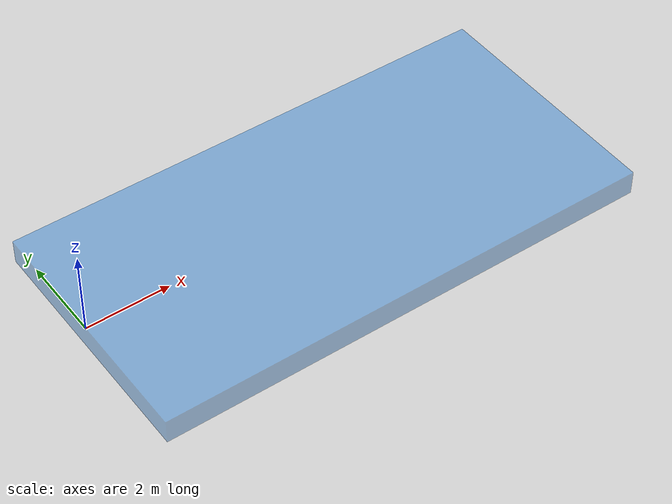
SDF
<?xml version="1.0" ?>
<!-- Water volume of the pool, visual only (MIT, see LICENSE). -->
<sdf version="1.6">
  <world name="world">
    <model name="arena_pool">
      <pose>0 0 0 0 0 0</pose>
      <link name="pool_water">
        <pose>6 0 -0.3 0 0 0</pose>
        <visual name="pool_water_visual">
          <geometry><box><size>12 6 0.6</size></box></geometry>
          <material>
            <ambient>0 0.3 0.6 0.4</ambient>
            <diffuse>0 0.4 0.8 0.4</diffuse>
          </material>
        </visual>
      </link>
    </model>
  </world>
</sdf>
